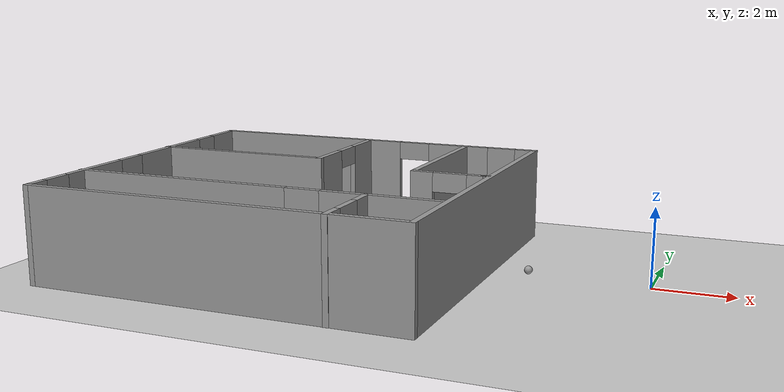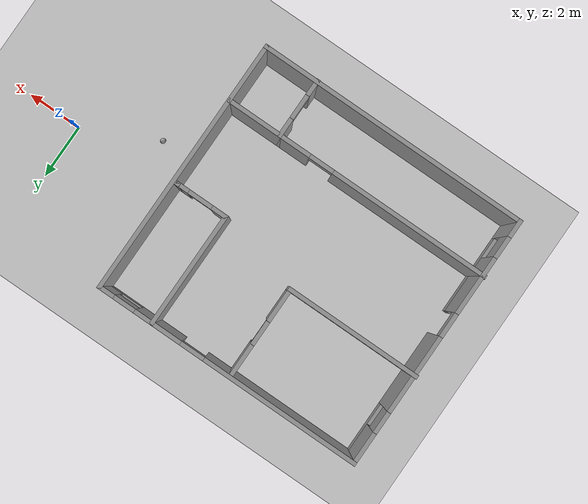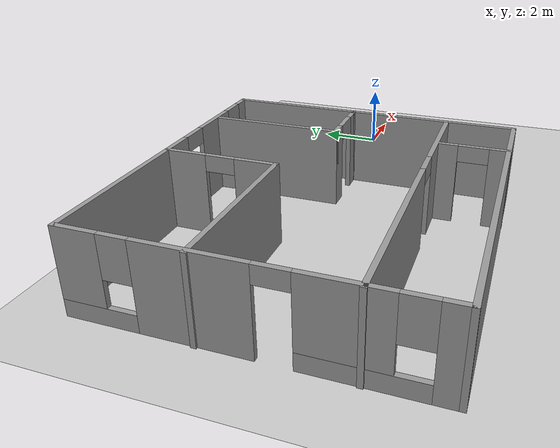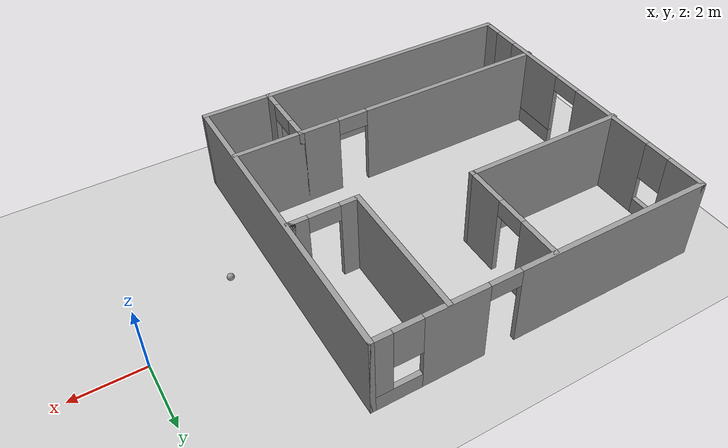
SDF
<sdf version="1.6">
 <world name="default">
  <light name="sun" type="directional">
   <pose>0 0 10 0 -0 0</pose>
   <diffuse>0.8 0.8 0.8 1</diffuse>
   <specular>0.2 0.2 0.2 1</specular>
   <attenuation>
    <range>1000</range>
    <constant>0.9</constant>
    <linear>0.01</linear>
    <quadratic>0.001</quadratic>
   </attenuation>
   <direction>-0.5 0.1 -0.9</direction>
  </light>
  <model name="ground_plane">
   <static>1</static>
   <link name="link">
    <collision name="collision">
     <geometry><plane><normal>0 0 1</normal><size>100 100</size></plane></geometry>
     <surface>
      <contact><collide_bitmask>65535</collide_bitmask></contact>
      <friction><ode><mu>100</mu><mu2>50</mu2></ode></friction>
     </surface>
    </collision>
    <visual name="visual">
     <cast_shadows>0</cast_shadows>
     <geometry><plane><normal>0 0 1</normal><size>100 100</size></plane></geometry>
     <material>
      <script><uri>file://media/materials/scripts/gazebo.material</uri><name>Gazebo/Grey</name></script>
     </material>
    </visual>
   </link>
  </model>
  <gravity>0 0 -9.8</gravity>
  <magnetic_field>6e-06 2.3e-05 -4.2e-05</magnetic_field>
  <atmosphere type="adiabatic"/>
  <physics name="default_physics" default="0" type="ode">
   <max_step_size>0.001</max_step_size>
   <real_time_factor>1</real_time_factor>
   <real_time_update_rate>1000</real_time_update_rate>
  </physics>
  <scene><ambient>0.4 0.4 0.4 1</ambient><background>0.7 0.7 0.7 1</background><shadows>1</shadows></scene>
  <spherical_coordinates>
   <surface_model>EARTH_WGS84</surface_model>
   <latitude_deg>0</latitude_deg>
   <longitude_deg>0</longitude_deg>
   <elevation>0</elevation>
   <heading_deg>0</heading_deg>
  </spherical_coordinates>
  <model name="myhouse">
   <pose>-8.94 -0.84 0 0 -0 0</pose>
   <link name="Wall_0">
    <pose>0.025 4.68 0 0 -0 0</pose>
    <visual name="Wall_0_Visual_0">
     <pose>-2.0575 0 1.25 0 -0 0</pose>
     <geometry><box><size>5.885 0.15 2.5</size></box></geometry>
     <material>
      <script><uri>file://media/materials/scripts/gazebo.material</uri><name>Gazebo/Grey</name></script>
      <ambient>1 1 1 1</ambient>
     </material>
     <meta><layer>0</layer></meta>
    </visual>
    <collision name="Wall_0_Collision_0">
     <geometry><box><size>5.885 0.15 2.5</size></box></geometry>
     <pose>-2.0575 0 1.25 0 -0 0</pose>
    </collision>
    <visual name="Wall_0_Visual_1">
     <pose>2.68 0 1.25 0 -0 0</pose>
     <geometry><box><size>1.79 0.15 2.5</size></box></geometry>
     <material>
      <script><uri>file://media/materials/scripts/gazebo.material</uri><name>Gazebo/Grey</name></script>
      <ambient>1 1 1 1</ambient>
     </material>
     <meta><layer>0</layer></meta>
    </visual>
    <collision name="Wall_0_Collision_1">
     <geometry><box><size>1.79 0.15 2.5</size></box></geometry>
     <pose>2.68 0 1.25 0 -0 0</pose>
    </collision>
    <visual name="Wall_0_Visual_2">
     <pose>4.2875 0 0.25 0 -0 0</pose>
     <geometry><box><size>1.425 0.15 0.5</size></box></geometry>
     <material>
      <script><uri>file://media/materials/scripts/gazebo.material</uri><name>Gazebo/Grey</name></script>
      <ambient>1 1 1 1</ambient>
     </material>
     <meta><layer>0</layer></meta>
    </visual>
    <collision name="Wall_0_Collision_2">
     <geometry><box><size>1.425 0.15 0.5</size></box></geometry>
     <pose>4.2875 0 0.25 0 -0 0</pose>
    </collision>
    <visual name="Wall_0_Visual_3">
     <pose>4.6875 0 1.5 0 -0 0</pose>
     <geometry><box><size>0.625 0.15 2</size></box></geometry>
     <material>
      <script><uri>file://media/materials/scripts/gazebo.material</uri><name>Gazebo/Grey</name></script>
      <ambient>1 1 1 1</ambient>
     </material>
     <meta><layer>0</layer></meta>
    </visual>
    <collision name="Wall_0_Collision_3">
     <geometry><box><size>0.625 0.15 2</size></box></geometry>
     <pose>4.6875 0 1.5 0 -0 0</pose>
    </collision>
    <visual name="Wall_0_Visual_4">
     <pose>3.975 0 1.9 0 -0 0</pose>
     <geometry><box><size>0.8 0.15 1.2</size></box></geometry>
     <material>
      <script><uri>file://media/materials/scripts/gazebo.material</uri><name>Gazebo/Grey</name></script>
      <ambient>1 1 1 1</ambient>
     </material>
     <meta><layer>0</layer></meta>
    </visual>
    <collision name="Wall_0_Collision_4">
     <geometry><box><size>0.8 0.15 1.2</size></box></geometry>
     <pose>3.975 0 1.9 0 -0 0</pose>
    </collision>
    <visual name="Wall_0_Visual_5">
     <pose>1.335 0 2.25 0 -0 0</pose>
     <geometry><box><size>0.9 0.15 0.5</size></box></geometry>
     <material>
      <script><uri>file://media/materials/scripts/gazebo.material</uri><name>Gazebo/Grey</name></script>
      <ambient>1 1 1 1</ambient>
     </material>
     <meta><layer>0</layer></meta>
    </visual>
    <collision name="Wall_0_Collision_5">
     <geometry><box><size>0.9 0.15 0.5</size></box></geometry>
     <pose>1.335 0 2.25 0 -0 0</pose>
    </collision>
   </link>
   <link name="Wall_1">
    <collision name="Wall_1_Collision">
     <geometry><box><size>9.5 0.15 2.5</size></box></geometry>
     <pose>0 0 1.25 0 -0 0</pose>
    </collision>
    <visual name="Wall_1_Visual">
     <pose>0 0 1.25 0 -0 0</pose>
     <geometry><box><size>9.5 0.15 2.5</size></box></geometry>
     <material>
      <script><uri>file://media/materials/scripts/gazebo.material</uri><name>Gazebo/Grey</name></script>
      <ambient>1 1 1 1</ambient>
     </material>
     <meta><layer>0</layer></meta>
    </visual>
    <pose>4.95 0.005 0 0 0 -1.5708</pose>
   </link>
   <link name="Wall_11">
    <pose>-0.015 -2.58 0 0 -0 0</pose>
    <visual name="Wall_11_Visual_0">
     <pose>-2.0375 0 1.25 0 -0 0</pose>
     <geometry><box><size>5.925 0.15 2.5</size></box></geometry>
     <material>
      <script><uri>file://media/materials/scripts/gazebo.material</uri><name>Gazebo/Grey</name></script>
      <ambient>1 1 1 1</ambient>
     </material>
     <meta><layer>0</layer></meta>
    </visual>
    <collision name="Wall_11_Collision_0">
     <geometry><box><size>5.925 0.15 2.5</size></box></geometry>
     <pose>-2.0375 0 1.25 0 -0 0</pose>
    </collision>
    <visual name="Wall_11_Visual_1">
     <pose>3.4125 0 1.25 0 -0 0</pose>
     <geometry><box><size>3.175 0.15 2.5</size></box></geometry>
     <material>
      <script><uri>file://media/materials/scripts/gazebo.material</uri><name>Gazebo/Grey</name></script>
      <ambient>1 1 1 1</ambient>
     </material>
     <meta><layer>0</layer></meta>
    </visual>
    <collision name="Wall_11_Collision_1">
     <geometry><box><size>3.175 0.15 2.5</size></box></geometry>
     <pose>3.4125 0 1.25 0 -0 0</pose>
    </collision>
    <visual name="Wall_11_Visual_2">
     <pose>1.375 0 2.25 0 -0 0</pose>
     <geometry><box><size>0.9 0.15 0.5</size></box></geometry>
     <material>
      <script><uri>file://media/materials/scripts/gazebo.material</uri><name>Gazebo/Grey</name></script>
      <ambient>1 1 1 1</ambient>
     </material>
     <meta><layer>0</layer></meta>
    </visual>
    <collision name="Wall_11_Collision_2">
     <geometry><box><size>0.9 0.15 0.5</size></box></geometry>
     <pose>1.375 0 2.25 0 -0 0</pose>
    </collision>
   </link>
   <link name="Wall_13">
    <pose>2.98 -3.63 0 0 0 -1.5708</pose>
    <visual name="Wall_13_Visual_0">
     <pose>-0.7625 0 1.25 0 -0 0</pose>
     <geometry><box><size>0.725 0.15 2.5</size></box></geometry>
     <material>
      <script><uri>file://media/materials/scripts/gazebo.material</uri><name>Gazebo/Grey</name></script>
      <ambient>1 1 1 1</ambient>
     </material>
     <meta><layer>0</layer></meta>
    </visual>
    <collision name="Wall_13_Collision_0">
     <geometry><box><size>0.725 0.15 2.5</size></box></geometry>
     <pose>-0.7625 0 1.25 0 -0 0</pose>
    </collision>
    <visual name="Wall_13_Visual_1">
     <pose>0.8125 0 1.25 0 -0 0</pose>
     <geometry><box><size>0.625 0.15 2.5</size></box></geometry>
     <material>
      <script><uri>file://media/materials/scripts/gazebo.material</uri><name>Gazebo/Grey</name></script>
      <ambient>1 1 1 1</ambient>
     </material>
     <meta><layer>0</layer></meta>
    </visual>
    <collision name="Wall_13_Collision_1">
     <geometry><box><size>0.625 0.15 2.5</size></box></geometry>
     <pose>0.8125 0 1.25 0 -0 0</pose>
    </collision>
    <visual name="Wall_13_Visual_2">
     <pose>0.05 0 2.25 0 -0 0</pose>
     <geometry><box><size>0.9 0.15 0.5</size></box></geometry>
     <material>
      <script><uri>file://media/materials/scripts/gazebo.material</uri><name>Gazebo/Grey</name></script>
      <ambient>1 1 1 1</ambient>
     </material>
     <meta><layer>0</layer></meta>
    </visual>
    <collision name="Wall_13_Collision_2">
     <geometry><box><size>0.9 0.15 0.5</size></box></geometry>
     <pose>0.05 0 2.25 0 -0 0</pose>
    </collision>
   </link>
   <link name="Wall_15">
    <collision name="Wall_15_Collision">
     <geometry><box><size>0.15 0.15 2.5</size></box></geometry>
     <pose>0 0 1.25 0 -0 0</pose>
    </collision>
    <visual name="Wall_15_Visual">
     <pose>0 0 1.25 0 -0 0</pose>
     <geometry><box><size>0.15 0.15 2.5</size></box></geometry>
     <material>
      <script><uri>file://media/materials/scripts/gazebo.material</uri><name>Gazebo/Grey</name></script>
      <ambient>1 1 1 1</ambient>
     </material>
     <meta><layer>0</layer></meta>
    </visual>
    <pose>4.77 0.56 0 0 -0 0</pose>
   </link>
   <link name="Wall_16">
    <collision name="Wall_16_Collision">
     <geometry><box><size>0.25 0.15 2.5</size></box></geometry>
     <pose>0 0 1.25 0 -0 0</pose>
    </collision>
    <visual name="Wall_16_Visual">
     <pose>0 0 1.25 0 -0 0</pose>
     <geometry><box><size>0.25 0.15 2.5</size></box></geometry>
     <material>
      <script><uri>file://media/materials/scripts/gazebo.material</uri><name>Gazebo/Grey</name></script>
      <ambient>1 1 1 1</ambient>
     </material>
     <meta><layer>0</layer></meta>
    </visual>
    <pose>4.82 0.56 0 0 -0 0</pose>
   </link>
   <link name="Wall_2">
    <collision name="Wall_2_Collision">
     <geometry><box><size>10 0.15 2.5</size></box></geometry>
     <pose>0 0 1.25 0 -0 0</pose>
    </collision>
    <visual name="Wall_2_Visual">
     <pose>0 0 1.25 0 -0 0</pose>
     <geometry><box><size>10 0.15 2.5</size></box></geometry>
     <material>
      <script><uri>file://media/materials/scripts/gazebo.material</uri><name>Gazebo/Grey</name></script>
      <ambient>1 1 1 1</ambient>
     </material>
     <meta><layer>0</layer></meta>
    </visual>
    <pose>0.025 -4.67 0 0 -0 3.14159</pose>
   </link>
   <link name="Wall_3">
    <pose>-4.9 0.005 0 0 -0 1.5708</pose>
    <visual name="Wall_3_Visual_0">
     <pose>-4.4075 0 1.25 0 -0 0</pose>
     <geometry><box><size>0.685 0.15 2.5</size></box></geometry>
     <material>
      <script><uri>file://media/materials/scripts/gazebo.material</uri><name>Gazebo/Grey</name></script>
      <ambient>1 1 1 1</ambient>
     </material>
     <meta><layer>0</layer></meta>
    </visual>
    <collision name="Wall_3_Collision_0">
     <geometry><box><size>0.685 0.15 2.5</size></box></geometry>
     <pose>-4.4075 0 1.25 0 -0 0</pose>
    </collision>
    <visual name="Wall_3_Visual_1">
     <pose>1.26 0 1.25 0 -0 0</pose>
     <geometry><box><size>2.91 0.15 2.5</size></box></geometry>
     <material>
      <script><uri>file://media/materials/scripts/gazebo.material</uri><name>Gazebo/Grey</name></script>
      <ambient>1 1 1 1</ambient>
     </material>
     <meta><layer>0</layer></meta>
    </visual>
    <collision name="Wall_3_Collision_1">
     <geometry><box><size>2.91 0.15 2.5</size></box></geometry>
     <pose>1.26 0 1.25 0 -0 0</pose>
    </collision>
    <visual name="Wall_3_Visual_2">
     <pose>-2.58 0 0.25 0 -0 0</pose>
     <geometry><box><size>2.97 0.15 0.5</size></box></geometry>
     <material>
      <script><uri>file://media/materials/scripts/gazebo.material</uri><name>Gazebo/Grey</name></script>
      <ambient>1 1 1 1</ambient>
     </material>
     <meta><layer>0</layer></meta>
    </visual>
    <collision name="Wall_3_Collision_2">
     <geometry><box><size>2.97 0.15 0.5</size></box></geometry>
     <pose>-2.58 0 0.25 0 -0 0</pose>
    </collision>
    <visual name="Wall_3_Visual_3">
     <pose>3.7325 0 0.25 0 -0 0</pose>
     <geometry><box><size>2.035 0.15 0.5</size></box></geometry>
     <material>
      <script><uri>file://media/materials/scripts/gazebo.material</uri><name>Gazebo/Grey</name></script>
      <ambient>1 1 1 1</ambient>
     </material>
     <meta><layer>0</layer></meta>
    </visual>
    <collision name="Wall_3_Collision_3">
     <geometry><box><size>2.035 0.15 0.5</size></box></geometry>
     <pose>3.7325 0 0.25 0 -0 0</pose>
    </collision>
    <visual name="Wall_3_Visual_4">
     <pose>-2.18 0 1.5 0 -0 0</pose>
     <geometry><box><size>2.17 0.15 2</size></box></geometry>
     <material>
      <script><uri>file://media/materials/scripts/gazebo.material</uri><name>Gazebo/Grey</name></script>
      <ambient>1 1 1 1</ambient>
     </material>
     <meta><layer>0</layer></meta>
    </visual>
    <collision name="Wall_3_Collision_4">
     <geometry><box><size>2.17 0.15 2</size></box></geometry>
     <pose>-2.18 0 1.5 0 -0 0</pose>
    </collision>
    <visual name="Wall_3_Visual_5">
     <pose>-2.18 0 1.5 0 -0 0</pose>
     <geometry><box><size>2.17 0.15 2</size></box></geometry>
     <material>
      <script><uri>file://media/materials/scripts/gazebo.material</uri><name>Gazebo/Grey</name></script>
      <ambient>1 1 1 1</ambient>
     </material>
     <meta><layer>0</layer></meta>
    </visual>
    <collision name="Wall_3_Collision_5">
     <geometry><box><size>2.17 0.15 2</size></box></geometry>
     <pose>-2.18 0 1.5 0 -0 0</pose>
    </collision>
    <visual name="Wall_3_Visual_6">
     <pose>4.1325 0 1.5 0 -0 0</pose>
     <geometry><box><size>1.235 0.15 2</size></box></geometry>
     <material>
      <script><uri>file://media/materials/scripts/gazebo.material</uri><name>Gazebo/Grey</name></script>
      <ambient>1 1 1 1</ambient>
     </material>
     <meta><layer>0</layer></meta>
    </visual>
    <collision name="Wall_3_Collision_6">
     <geometry><box><size>1.235 0.15 2</size></box></geometry>
     <pose>4.1325 0 1.5 0 -0 0</pose>
    </collision>
    <visual name="Wall_3_Visual_7">
     <pose>-3.665 0 1.9 0 -0 0</pose>
     <geometry><box><size>0.8 0.15 1.2</size></box></geometry>
     <material>
      <script><uri>file://media/materials/scripts/gazebo.material</uri><name>Gazebo/Grey</name></script>
      <ambient>1 1 1 1</ambient>
     </material>
     <meta><layer>0</layer></meta>
    </visual>
    <collision name="Wall_3_Collision_7">
     <geometry><box><size>0.8 0.15 1.2</size></box></geometry>
     <pose>-3.665 0 1.9 0 -0 0</pose>
    </collision>
    <visual name="Wall_3_Visual_8">
     <pose>3.115 0 1.9 0 -0 0</pose>
     <geometry><box><size>0.8 0.15 1.2</size></box></geometry>
     <material>
      <script><uri>file://media/materials/scripts/gazebo.material</uri><name>Gazebo/Grey</name></script>
      <ambient>1 1 1 1</ambient>
     </material>
     <meta><layer>0</layer></meta>
    </visual>
    <collision name="Wall_3_Collision_8">
     <geometry><box><size>0.8 0.15 1.2</size></box></geometry>
     <pose>3.115 0 1.9 0 -0 0</pose>
    </collision>
    <visual name="Wall_3_Visual_9">
     <pose>-0.645 0 2.25 0 -0 0</pose>
     <geometry><box><size>0.9 0.15 0.5</size></box></geometry>
     <material>
      <script><uri>file://media/materials/scripts/gazebo.material</uri><name>Gazebo/Grey</name></script>
      <ambient>1 1 1 1</ambient>
     </material>
     <meta><layer>0</layer></meta>
    </visual>
    <collision name="Wall_3_Collision_9">
     <geometry><box><size>0.9 0.15 0.5</size></box></geometry>
     <pose>-0.645 0 2.25 0 -0 0</pose>
    </collision>
    <visual name="Wall_3_Visual_10">
     <pose>-0.645 0 2.25 0 -0 0</pose>
     <geometry><box><size>0.9 0.15 0.5</size></box></geometry>
     <material>
      <script><uri>file://media/materials/scripts/gazebo.material</uri><name>Gazebo/Grey</name></script>
      <ambient>1 1 1 1</ambient>
     </material>
     <meta><layer>0</layer></meta>
    </visual>
    <collision name="Wall_3_Collision_10">
     <geometry><box><size>0.9 0.15 0.5</size></box></geometry>
     <pose>-0.645 0 2.25 0 -0 0</pose>
    </collision>
   </link>
   <link name="Wall_5">
    <pose>-0.1 2.965 0 0 0 -1.5708</pose>
    <visual name="Wall_5_Visual_0">
     <pose>-1.1075 0 1.25 0 -0 0</pose>
     <geometry><box><size>1.285 0.15 2.5</size></box></geometry>
     <material>
      <script><uri>file://media/materials/scripts/gazebo.material</uri><name>Gazebo/Grey</name></script>
      <ambient>1 1 1 1</ambient>
     </material>
     <meta><layer>0</layer></meta>
    </visual>
    <collision name="Wall_5_Collision_0">
     <geometry><box><size>1.285 0.15 2.5</size></box></geometry>
     <pose>-1.1075 0 1.25 0 -0 0</pose>
    </collision>
    <visual name="Wall_5_Visual_1">
     <pose>1.0925 0 1.25 0 -0 0</pose>
     <geometry><box><size>1.315 0.15 2.5</size></box></geometry>
     <material>
      <script><uri>file://media/materials/scripts/gazebo.material</uri><name>Gazebo/Grey</name></script>
      <ambient>1 1 1 1</ambient>
     </material>
     <meta><layer>0</layer></meta>
    </visual>
    <collision name="Wall_5_Collision_1">
     <geometry><box><size>1.315 0.15 2.5</size></box></geometry>
     <pose>1.0925 0 1.25 0 -0 0</pose>
    </collision>
    <visual name="Wall_5_Visual_2">
     <pose>-0.015 0 2.25 0 -0 0</pose>
     <geometry><box><size>0.9 0.15 0.5</size></box></geometry>
     <material>
      <script><uri>file://media/materials/scripts/gazebo.material</uri><name>Gazebo/Grey</name></script>
      <ambient>1 1 1 1</ambient>
     </material>
     <meta><layer>0</layer></meta>
    </visual>
    <collision name="Wall_5_Collision_2">
     <geometry><box><size>0.9 0.15 0.5</size></box></geometry>
     <pose>-0.015 0 2.25 0 -0 0</pose>
    </collision>
   </link>
   <link name="Wall_6">
    <collision name="Wall_6_Collision">
     <geometry><box><size>5 0.15 2.5</size></box></geometry>
     <pose>0 0 1.25 0 -0 0</pose>
    </collision>
    <visual name="Wall_6_Visual">
     <pose>0 0 1.25 0 -0 0</pose>
     <geometry><box><size>5 0.15 2.5</size></box></geometry>
     <material>
      <script><uri>file://media/materials/scripts/gazebo.material</uri><name>Gazebo/Grey</name></script>
      <ambient>1 1 1 1</ambient>
     </material>
     <meta><layer>0</layer></meta>
    </visual>
    <pose>-2.525 1.29 0 0 -0 3.14159</pose>
   </link>
   <link name="Wall_8">
    <collision name="Wall_8_Collision">
     <geometry><box><size>4.25 0.15 2.5</size></box></geometry>
     <pose>0 0 1.25 0 -0 0</pose>
    </collision>
    <visual name="Wall_8_Visual">
     <pose>0 0 1.25 0 -0 0</pose>
     <geometry><box><size>4.25 0.15 2.5</size></box></geometry>
     <material>
      <script><uri>file://media/materials/scripts/gazebo.material</uri><name>Gazebo/Grey</name></script>
      <ambient>1 1 1 1</ambient>
     </material>
     <meta><layer>0</layer></meta>
    </visual>
    <pose>2.92 2.61 0 0 0 -1.5708</pose>
   </link>
   <link name="Wall_9">
    <pose>3.845 0.56 0 0 -0 0</pose>
    <visual name="Wall_9_Visual_0">
     <pose>-0.6975 0 1.25 0 -0 0</pose>
     <geometry><box><size>0.605 0.15 2.5</size></box></geometry>
     <material>
      <script><uri>file://media/materials/scripts/gazebo.material</uri><name>Gazebo/Grey</name></script>
      <ambient>1 1 1 1</ambient>
     </material>
     <meta><layer>0</layer></meta>
    </visual>
    <collision name="Wall_9_Collision_0">
     <geometry><box><size>0.605 0.15 2.5</size></box></geometry>
     <pose>-0.6975 0 1.25 0 -0 0</pose>
    </collision>
    <visual name="Wall_9_Visual_1">
     <pose>0.7525 0 1.25 0 -0 0</pose>
     <geometry><box><size>0.495 0.15 2.5</size></box></geometry>
     <material>
      <script><uri>file://media/materials/scripts/gazebo.material</uri><name>Gazebo/Grey</name></script>
      <ambient>1 1 1 1</ambient>
     </material>
     <meta><layer>0</layer></meta>
    </visual>
    <collision name="Wall_9_Collision_1">
     <geometry><box><size>0.495 0.15 2.5</size></box></geometry>
     <pose>0.7525 0 1.25 0 -0 0</pose>
    </collision>
    <visual name="Wall_9_Visual_2">
     <pose>0.055 0 2.25 0 -0 0</pose>
     <geometry><box><size>0.9 0.15 0.5</size></box></geometry>
     <material>
      <script><uri>file://media/materials/scripts/gazebo.material</uri><name>Gazebo/Grey</name></script>
      <ambient>1 1 1 1</ambient>
     </material>
     <meta><layer>0</layer></meta>
    </visual>
    <collision name="Wall_9_Collision_2">
     <geometry><box><size>0.9 0.15 0.5</size></box></geometry>
     <pose>0.055 0 2.25 0 -0 0</pose>
    </collision>
   </link>
   <static>1</static>
  </model>
  <model name="mymodel">
   <link name="link_1">
    <inertial>
     <mass>1</mass>
     <inertia><ixx>0.1</ixx><ixy>0</ixy><ixz>0</ixz><iyy>0.1</iyy><iyz>0</iyz><izz>0.1</izz></inertia>
    </inertial>
    <visual name="visual">
     <geometry><sphere><radius>0.1</radius></sphere></geometry>
     <material>
      <lighting>1</lighting>
      <script><uri>file://media/materials/scripts/gazebo.material</uri><name>Gazebo/Grey</name></script>
      <shader type="pixel"><normal_map>__default__</normal_map></shader>
      <ambient>1 1 1 1</ambient>
      <diffuse>1 1 1 1</diffuse>
      <specular>1 1 1 1</specular>
      <emissive>1 1 1 1</emissive>
     </material>
    </visual>
    <collision name="collision">
     <geometry><sphere><radius>0.1</radius></sphere></geometry>
     <surface>
      <friction>
       <ode><mu>1</mu><mu2>1</mu2><fdir1>0 0 0</fdir1><slip1>0</slip1><slip2>0</slip2></ode>
       <torsional>
        <coefficient>1</coefficient>
        <patch_radius>0</patch_radius>
        <surface_radius>0</surface_radius>
        <use_patch_radius>1</use_patch_radius>
        <ode><slip>0</slip></ode>
       </torsional>
      </friction>
      <bounce><restitution_coefficient>0</restitution_coefficient><threshold>1e+06</threshold></bounce>
      <contact>
       <collide_without_contact>0</collide_without_contact>
       <collide_without_contact_bitmask>1</collide_without_contact_bitmask>
       <collide_bitmask>1</collide_bitmask>
       <ode>
        <soft_cfm>0</soft_cfm>
        <soft_erp>0.2</soft_erp>
        <kp>1e+13</kp>
        <kd>1</kd>
        <max_vel>0.01</max_vel>
        <min_depth>0</min_depth>
       </ode>
       <bullet>
        <split_impulse>1</split_impulse>
        <split_impulse_penetration_threshold>-0.01</split_impulse_penetration_threshold>
        <soft_cfm>0</soft_cfm>
        <soft_erp>0.2</soft_erp>
        <kp>1e+13</kp>
        <kd>1</kd>
       </bullet>
      </contact>
     </surface>
    </collision>
   </link>
   <static>0</static>
   <pose>-2.70025 -1.24895 0.5 0 -0 0</pose>
  </model>
 </world>
</sdf>
